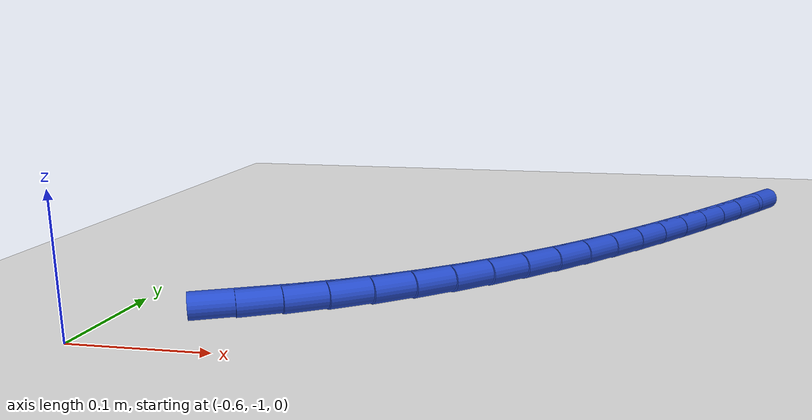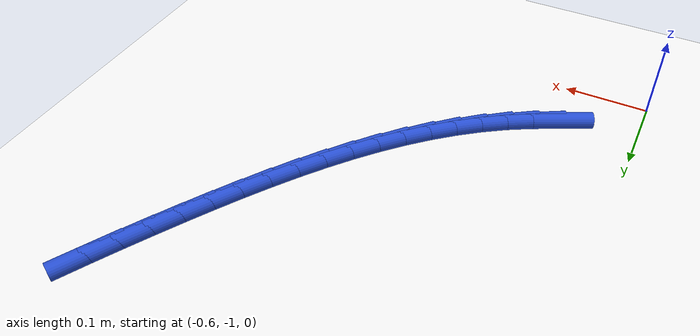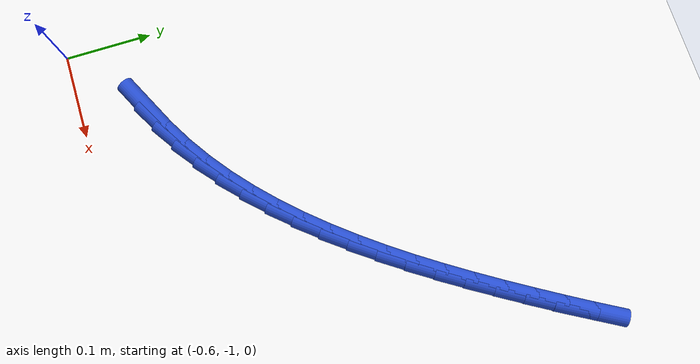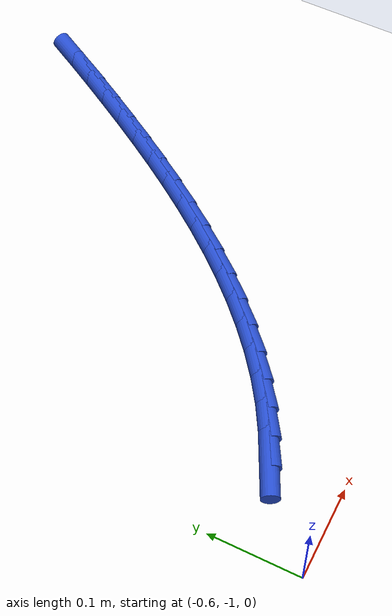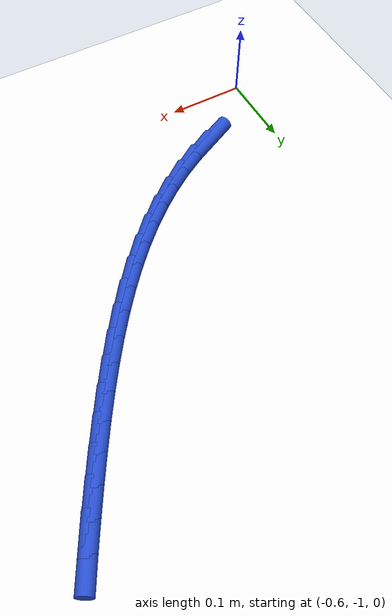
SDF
<sdf version="1.6">
 <world name="default">
  <model name="ground_plane">
   <static>1</static>
   <link name="link">
    <collision name="collision">
     <geometry><plane><normal>0 0 1</normal><size>100 100</size></plane></geometry>
     <surface><friction><ode><mu>100</mu><mu2>50</mu2></ode></friction></surface>
    </collision>
    <visual name="visual">
     <cast_shadows>0</cast_shadows>
     <geometry><plane><normal>0 0 1</normal><size>100 100</size></plane></geometry>
     <material>
      <script><uri>file://media/materials/scripts/gazebo.material</uri><name>Gazebo/WhiteGlow</name></script>
     </material>
    </visual>
   </link>
  </model>
  <model name="line">
   <link name="link_176">
    <pose>-0.5097841796871428 -0.9236344806631307 0.01 0 1.57 0.4592110253018928</pose>
    <collision name="collision">
     <geometry><cylinder><radius>0.01</radius><length>0.08</length></cylinder></geometry>
    </collision>
    <visual name="visual">
     <material>
      <script><name>Gazebo/Blue</name><uri>file://media/materials/scripts/gazebo.material</uri></script>
     </material>
     <geometry><cylinder><radius>0.01</radius><length>0.08</length></cylinder></geometry>
    </visual>
   </link>
   <link name="link_177">
    <pose>-0.48177595479177915 -0.9097853514767121 0.01 0 1.57 0.5218747584148432</pose>
    <collision name="collision">
     <geometry><cylinder><radius>0.01</radius><length>0.08</length></cylinder></geometry>
    </collision>
    <visual name="visual">
     <material>
      <script><name>Gazebo/Blue</name><uri>file://media/materials/scripts/gazebo.material</uri></script>
     </material>
     <geometry><cylinder><radius>0.01</radius><length>0.08</length></cylinder></geometry>
    </visual>
   </link>
   <link name="link_178">
    <pose>-0.45476917973275194 -0.894255001149378 0.01 0 1.57 0.5894381950284715</pose>
    <collision name="collision">
     <geometry><cylinder><radius>0.01</radius><length>0.08</length></cylinder></geometry>
    </collision>
    <visual name="visual">
     <material>
      <script><name>Gazebo/Blue</name><uri>file://media/materials/scripts/gazebo.material</uri></script>
     </material>
     <geometry><cylinder><radius>0.01</radius><length>0.08</length></cylinder></geometry>
    </visual>
   </link>
   <link name="link_179">
    <pose>-0.42882456890446324 -0.8769047427758356 0.01 0 1.57 0.6524731590135868</pose>
    <collision name="collision">
     <geometry><cylinder><radius>0.01</radius><length>0.08</length></cylinder></geometry>
    </collision>
    <visual name="visual">
     <material>
      <script><name>Gazebo/Blue</name><uri>file://media/materials/scripts/gazebo.material</uri></script>
     </material>
     <geometry><cylinder><radius>0.01</radius><length>0.08</length></cylinder></geometry>
    </visual>
   </link>
   <link name="link_180">
    <pose>-0.4038966881906385 -0.8578569955938625 0.01 0 1.57 0.710158296560167</pose>
    <collision name="collision">
     <geometry><cylinder><radius>0.01</radius><length>0.08</length></cylinder></geometry>
    </collision>
    <visual name="visual">
     <material>
      <script><name>Gazebo/Blue</name><uri>file://media/materials/scripts/gazebo.material</uri></script>
     </material>
     <geometry><cylinder><radius>0.01</radius><length>0.08</length></cylinder></geometry>
    </visual>
   </link>
   <link name="link_181">
    <pose>-0.3799326174879827 -0.8372525930157327 0.01 0 1.57 0.7624849744331853</pose>
    <collision name="collision">
     <geometry><cylinder><radius>0.01</radius><length>0.08</length></cylinder></geometry>
    </collision>
    <visual name="visual">
     <material>
      <script><name>Gazebo/Blue</name><uri>file://media/materials/scripts/gazebo.material</uri></script>
     </material>
     <geometry><cylinder><radius>0.01</radius><length>0.08</length></cylinder></geometry>
    </visual>
   </link>
   <link name="link_182">
    <pose>-0.3568794366932003 -0.8152323684537208 0.01 0 1.57 0.8095744124093514</pose>
    <collision name="collision">
     <geometry><cylinder><radius>0.01</radius><length>0.08</length></cylinder></geometry>
    </collision>
    <visual name="visual">
     <material>
      <script><name>Gazebo/Blue</name><uri>file://media/materials/scripts/gazebo.material</uri></script>
     </material>
     <geometry><cylinder><radius>0.01</radius><length>0.08</length></cylinder></geometry>
    </visual>
   </link>
   <link name="link_183">
    <pose>-0.33468422570299533 -0.7919371553200995 0.01 0 1.57 0.8516310907041961</pose>
    <collision name="collision">
     <geometry><cylinder><radius>0.01</radius><length>0.08</length></cylinder></geometry>
    </collision>
    <visual name="visual">
     <material>
      <script><name>Gazebo/Blue</name><uri>file://media/materials/scripts/gazebo.material</uri></script>
     </material>
     <geometry><cylinder><radius>0.01</radius><length>0.08</length></cylinder></geometry>
    </visual>
   </link>
   <link name="link_184">
    <pose>-0.3132940644140737 -0.7675077870271441 0.01 0 1.57 0.8889041260946728</pose>
    <collision name="collision">
     <geometry><cylinder><radius>0.01</radius><length>0.08</length></cylinder></geometry>
    </collision>
    <visual name="visual">
     <material>
      <script><name>Gazebo/Blue</name><uri>file://media/materials/scripts/gazebo.material</uri></script>
     </material>
     <geometry><cylinder><radius>0.01</radius><length>0.08</length></cylinder></geometry>
    </visual>
   </link>
   <link name="link_185">
    <pose>-0.2926560327231396 -0.7420850969871283 0.01 0 1.57 0.9216575772783955</pose>
    <collision name="collision">
     <geometry><cylinder><radius>0.01</radius><length>0.08</length></cylinder></geometry>
    </collision>
    <visual name="visual">
     <material>
      <script><name>Gazebo/Blue</name><uri>file://media/materials/scripts/gazebo.material</uri></script>
     </material>
     <geometry><cylinder><radius>0.01</radius><length>0.08</length></cylinder></geometry>
    </visual>
   </link>
   <link name="link_186">
    <pose>-0.27271721052689746 -0.7158099186123257 0.01 0 1.57 0.9501488909801918</pose>
    <collision name="collision">
     <geometry><cylinder><radius>0.01</radius><length>0.08</length></cylinder></geometry>
    </collision>
    <visual name="visual">
     <material>
      <script><name>Gazebo/Blue</name><uri>file://media/materials/scripts/gazebo.material</uri></script>
     </material>
     <geometry><cylinder><radius>0.01</radius><length>0.08</length></cylinder></geometry>
    </visual>
   </link>
   <link name="link_187">
    <pose>-0.2534246777220521 -0.6888230853150107 0.01 0 1.57 0.9746139242504377</pose>
    <collision name="collision">
     <geometry><cylinder><radius>0.01</radius><length>0.08</length></cylinder></geometry>
    </collision>
    <visual name="visual">
     <material>
      <script><name>Gazebo/Blue</name><uri>file://media/materials/scripts/gazebo.material</uri></script>
     </material>
     <geometry><cylinder><radius>0.01</radius><length>0.08</length></cylinder></geometry>
    </visual>
   </link>
   <link name="link_188">
    <pose>-0.23472551420530816 -0.6612654305074568 0.01 0 1.57 0.9952568155353332</pose>
    <collision name="collision">
     <geometry><cylinder><radius>0.01</radius><length>0.08</length></cylinder></geometry>
    </collision>
    <visual name="visual">
     <material>
      <script><name>Gazebo/Blue</name><uri>file://media/materials/scripts/gazebo.material</uri></script>
     </material>
     <geometry><cylinder><radius>0.01</radius><length>0.08</length></cylinder></geometry>
    </visual>
   </link>
   <link name="link_189">
    <pose>-0.21656679987336985 -0.6332777876019378 0.01 0 1.57 1.0122431249982773</pose>
    <collision name="collision">
     <geometry><cylinder><radius>0.01</radius><length>0.08</length></cylinder></geometry>
    </collision>
    <visual name="visual">
     <material>
      <script><name>Gazebo/Blue</name><uri>file://media/materials/scripts/gazebo.material</uri></script>
     </material>
     <geometry><cylinder><radius>0.01</radius><length>0.08</length></cylinder></geometry>
    </visual>
   </link>
   <link name="link_190">
    <pose>-0.19889561462294272 -0.6050009900107287 0.01 0 1.57 1.025694923755374</pose>
    <collision name="collision">
     <geometry><cylinder><radius>0.01</radius><length>0.08</length></cylinder></geometry>
    </collision>
    <visual name="visual">
     <material>
      <script><name>Gazebo/Blue</name><uri>file://media/materials/scripts/gazebo.material</uri></script>
     </material>
     <geometry><cylinder><radius>0.01</radius><length>0.08</length></cylinder></geometry>
    </visual>
   </link>
   <link name="link_191">
    <pose>-0.18165903835073108 -0.5765758711461031 0.01 0 1.57 1.035856920949027</pose>
    <collision name="collision">
     <geometry><cylinder><radius>0.01</radius><length>0.08</length></cylinder></geometry>
    </collision>
    <visual name="visual">
     <material>
      <script><name>Gazebo/Blue</name><uri>file://media/materials/scripts/gazebo.material</uri></script>
     </material>
     <geometry><cylinder><radius>0.01</radius><length>0.08</length></cylinder></geometry>
    </visual>
   </link>
   <link name="link_192">
    <pose>-0.16480771875366734 -0.5481382534199549 0.01 0 1.57 1.0461196341808636</pose>
    <collision name="collision">
     <geometry><cylinder><radius>0.01</radius><length>0.08</length></cylinder></geometry>
    </collision>
    <visual name="visual">
     <material>
      <script><name>Gazebo/Blue</name><uri>file://media/materials/scripts/gazebo.material</uri></script>
     </material>
     <geometry><cylinder><radius>0.01</radius><length>0.08</length></cylinder></geometry>
    </visual>
   </link>
   <link name="link_193">
    <pose>-0.1483625940524498 -0.5197252357118127 0.01 0 1.57 1.0596028942201146</pose>
    <collision name="collision">
     <geometry><cylinder><radius>0.01</radius><length>0.08</length></cylinder></geometry>
    </collision>
    <visual name="visual">
     <material>
      <script><name>Gazebo/Blue</name><uri>file://media/materials/scripts/gazebo.material</uri></script>
     </material>
     <geometry><cylinder><radius>0.01</radius><length>0.08</length></cylinder></geometry>
    </visual>
   </link>
  </model>
 </world>
</sdf>
